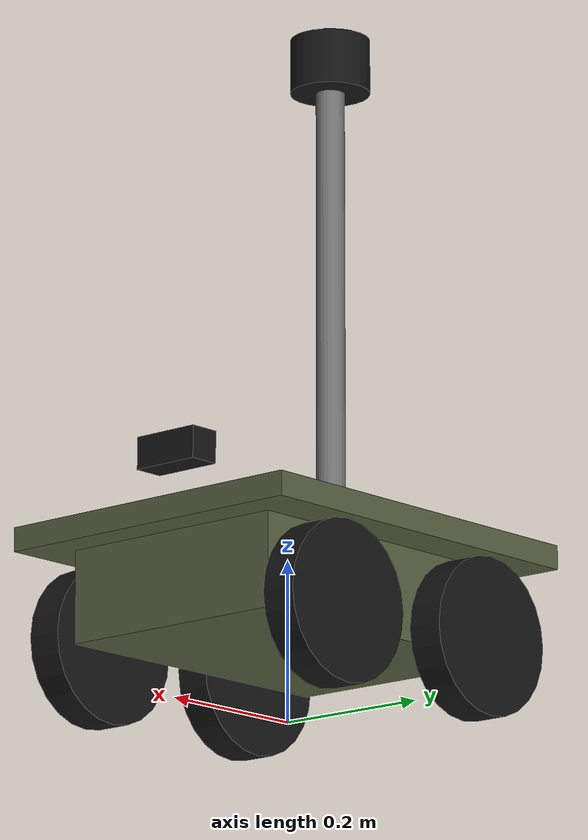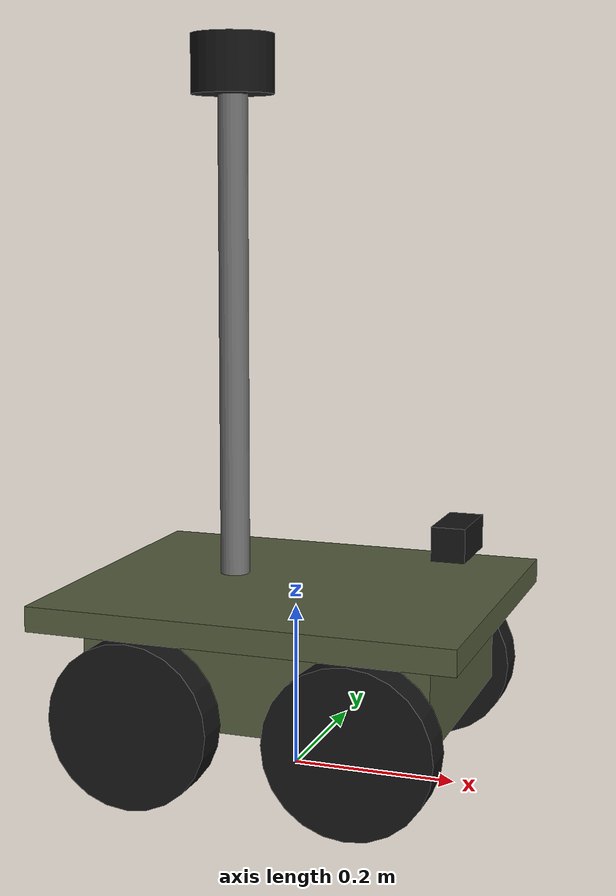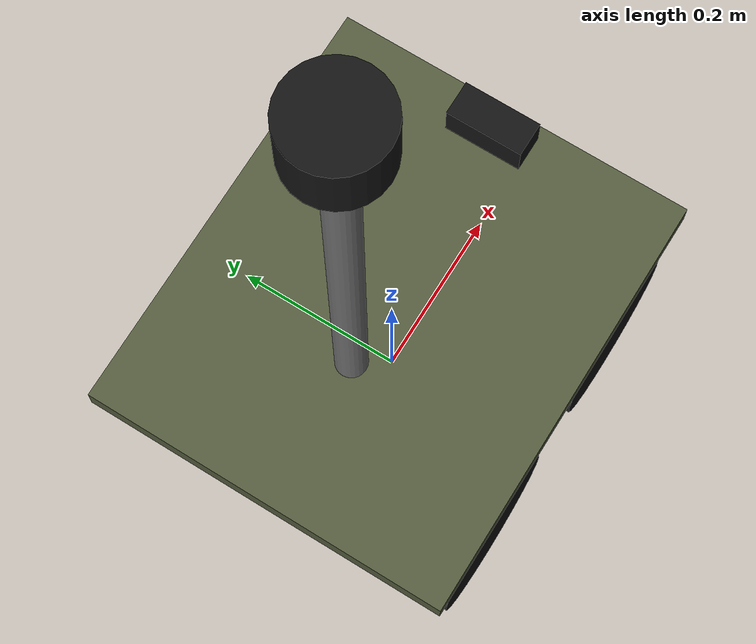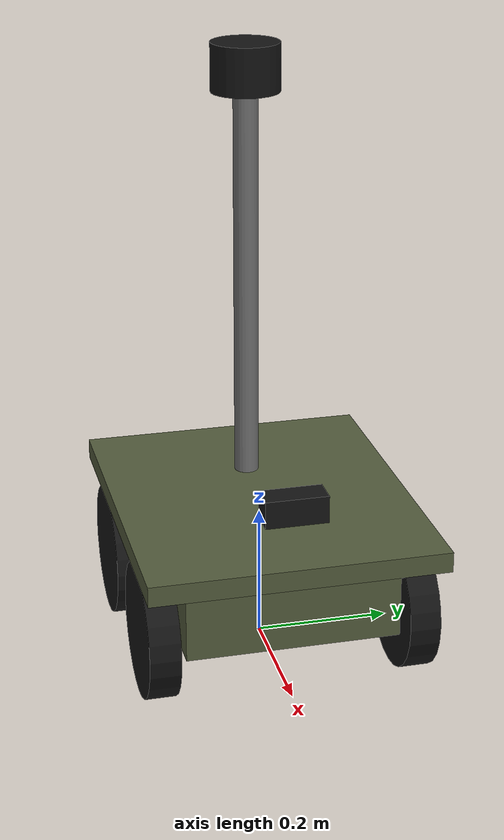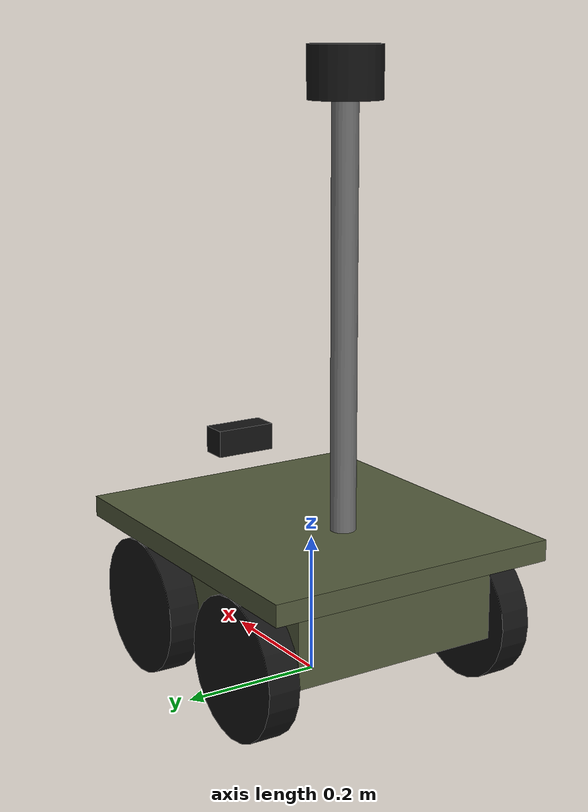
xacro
<?xml version="1.0"?>
<robot name="lup_ugv" xmlns:xacro="http://www.ros.org/wiki/xacro">

  <xacro:arg name="ns" default="lup1"/>
  <!-- interceptor (LUP) or transport (TRN: same base with a cargo box, sand coloured) -->
  <xacro:arg name="variant" default="interceptor"/>
  <xacro:arg name="enable_camera" default="true"/>
  <xacro:arg name="lidar_samples" default="720"/>
  <xacro:arg name="lidar_rate" default="10"/>
  <xacro:arg name="lidar_range_max" default="30.0"/>
  <xacro:arg name="lidar_noise_std" default="0.02"/>
  <xacro:arg name="lidar_height" default="0.85"/>
  <xacro:arg name="camera_width" default="640"/>
  <xacro:arg name="camera_height" default="480"/>
  <xacro:arg name="camera_rate" default="10"/>
  <xacro:arg name="camera_hfov" default="1.25"/>
  <xacro:arg name="camera_noise_std" default="0.007"/>
  <xacro:arg name="max_linear_velocity" default="2.0"/>
  <xacro:arg name="max_angular_velocity" default="3.0"/>
  <xacro:arg name="max_linear_acceleration" default="1.5"/>
  <xacro:arg name="wheel_separation_multiplier" default="1.12"/>
  <xacro:arg name="wheel_mu_longitudinal" default="1.0"/>
  <xacro:arg name="wheel_mu_lateral" default="0.3"/>

  <xacro:property name="ns" value="$(arg ns)"/>

  <!-- Jackal-like dimensions -->
  <xacro:property name="chassis_x" value="0.42"/>
  <xacro:property name="chassis_y" value="0.31"/>
  <xacro:property name="chassis_z" value="0.14"/>
  <xacro:property name="chassis_mass" value="15.0"/>
  <xacro:property name="wheel_radius" value="0.098"/>
  <xacro:property name="wheel_width" value="0.045"/>
  <xacro:property name="wheel_mass" value="0.5"/>
  <xacro:property name="wheel_base" value="0.262"/>
  <xacro:property name="track" value="0.375"/>
  <xacro:property name="chassis_z_center" value="0.155"/>

  <material name="olive"><color rgba="0.33 0.36 0.24 1"/></material>
  <material name="black"><color rgba="0.08 0.08 0.08 1"/></material>
  <material name="grey"><color rgba="0.45 0.45 0.45 1"/></material>
  <material name="sand"><color rgba="0.62 0.55 0.38 1"/></material>

  <xacro:macro name="box_inertia" params="m x y z">
    <inertia ixx="${m * (y*y + z*z) / 12.0}" ixy="0" ixz="0"
             iyy="${m * (x*x + z*z) / 12.0}" iyz="0"
             izz="${m * (x*x + y*y) / 12.0}"/>
  </xacro:macro>

  <link name="base_link">
    <visual>
      <origin xyz="0 0 ${chassis_z_center}"/>
      <geometry><box size="${chassis_x} ${chassis_y} ${chassis_z}"/></geometry>
      <material name="olive"/>
    </visual>
    <visual>
      <!-- Fenders over the wheels -->
      <origin xyz="0 0 ${chassis_z_center + 0.06}"/>
      <geometry><box size="0.508 0.43 0.03"/></geometry>
      <material name="olive"/>
    </visual>
    <xacro:if value="${'$(arg variant)' == 'transport'}">
      <visual>
        <!-- Cargo box (visual only, below the lidar plane) -->
        <origin xyz="-0.02 0 ${chassis_z_center + 0.19}"/>
        <geometry><box size="0.40 0.32 0.24"/></geometry>
        <material name="sand"/>
      </visual>
    </xacro:if>
    <collision>
      <origin xyz="0 0 ${chassis_z_center}"/>
      <geometry><box size="${chassis_x} ${chassis_y} ${chassis_z}"/></geometry>
    </collision>
    <inertial>
      <origin xyz="0 0 ${chassis_z_center}"/>
      <mass value="${chassis_mass}"/>
      <xacro:box_inertia m="${chassis_mass}" x="${chassis_x}" y="${chassis_y}" z="${chassis_z}"/>
    </inertial>
  </link>

  <xacro:macro name="wheel" params="name x y">
    <link name="${name}_wheel">
      <visual>
        <origin rpy="${pi/2} 0 0"/>
        <geometry><cylinder radius="${wheel_radius}" length="${wheel_width}"/></geometry>
        <material name="black"/>
      </visual>
      <collision>
        <origin rpy="${pi/2} 0 0"/>
        <geometry><cylinder radius="${wheel_radius}" length="${wheel_width}"/></geometry>
      </collision>
      <inertial>
        <mass value="${wheel_mass}"/>
        <inertia ixx="${wheel_mass * (3*wheel_radius*wheel_radius + wheel_width*wheel_width) / 12.0}"
                 ixy="0" ixz="0"
                 iyy="${wheel_mass * wheel_radius * wheel_radius / 2.0}" iyz="0"
                 izz="${wheel_mass * (3*wheel_radius*wheel_radius + wheel_width*wheel_width) / 12.0}"/>
      </inertial>
    </link>
    <joint name="${name}_wheel_joint" type="continuous">
      <parent link="base_link"/>
      <child link="${name}_wheel"/>
      <origin xyz="${x} ${y} ${wheel_radius}"/>
      <axis xyz="0 1 0"/>
    </joint>
    <gazebo reference="${name}_wheel">
      <mu1>$(arg wheel_mu_lateral)</mu1>
      <mu2>$(arg wheel_mu_longitudinal)</mu2>
      <fdir1>0 0 1</fdir1>
    </gazebo>
  </xacro:macro>

  <xacro:wheel name="front_left" x="${wheel_base/2}" y="${track/2}"/>
  <xacro:wheel name="rear_left" x="${-wheel_base/2}" y="${track/2}"/>
  <xacro:wheel name="front_right" x="${wheel_base/2}" y="${-track/2}"/>
  <xacro:wheel name="rear_right" x="${-wheel_base/2}" y="${-track/2}"/>

  <!-- Sensor mast and lidar -->
  <link name="mast_link">
    <visual>
      <origin xyz="0 0 ${($(arg lidar_height) - 0.27) / 2}"/>
      <geometry><cylinder radius="0.018" length="${$(arg lidar_height) - 0.27}"/></geometry>
      <material name="grey"/>
    </visual>
    <inertial>
      <mass value="0.3"/>
      <inertia ixx="0.001" ixy="0" ixz="0" iyy="0.001" iyz="0" izz="0.0001"/>
    </inertial>
  </link>
  <joint name="mast_joint" type="fixed">
    <parent link="base_link"/>
    <child link="mast_link"/>
    <origin xyz="-0.08 0 0.235"/>
  </joint>

  <link name="lidar_link">
    <visual>
      <geometry><cylinder radius="0.05" length="0.07"/></geometry>
      <material name="black"/>
    </visual>
    <inertial>
      <mass value="0.5"/>
      <inertia ixx="0.0005" ixy="0" ixz="0" iyy="0.0005" iyz="0" izz="0.0006"/>
    </inertial>
  </link>
  <joint name="lidar_joint" type="fixed">
    <parent link="base_link"/>
    <child link="lidar_link"/>
    <origin xyz="-0.08 0 $(arg lidar_height)"/>
  </joint>

  <gazebo reference="lidar_link">
    <sensor name="lidar" type="gpu_lidar">
      <gz_frame_id>${ns}/lidar_link</gz_frame_id>
      <topic>/${ns}/scan</topic>
      <update_rate>$(arg lidar_rate)</update_rate>
      <always_on>true</always_on>
      <visualize>false</visualize>
      <lidar>
        <scan>
          <horizontal>
            <samples>$(arg lidar_samples)</samples>
            <resolution>1</resolution>
            <min_angle>${-pi}</min_angle>
            <max_angle>${pi - 2.0 * pi / $(arg lidar_samples)}</max_angle>
          </horizontal>
          <vertical>
            <samples>1</samples>
            <resolution>1</resolution>
            <min_angle>0</min_angle>
            <max_angle>0</max_angle>
          </vertical>
        </scan>
        <range>
          <min>0.25</min>
          <max>$(arg lidar_range_max)</max>
          <resolution>0.01</resolution>
        </range>
        <noise>
          <type>gaussian</type>
          <mean>0.0</mean>
          <stddev>$(arg lidar_noise_std)</stddev>
        </noise>
        <!-- Ignore visuals flagged 0x2 (chain-link fence mesh), see generate_world.py -->
        <visibility_mask>4294967293</visibility_mask>
      </lidar>
    </sensor>
  </gazebo>

  <!-- Forward camera -->
  <link name="camera_link">
    <visual>
      <geometry><box size="0.04 0.09 0.04"/></geometry>
      <material name="black"/>
    </visual>
    <inertial>
      <mass value="0.1"/>
      <inertia ixx="0.0001" ixy="0" ixz="0" iyy="0.0001" iyz="0" izz="0.0001"/>
    </inertial>
  </link>
  <joint name="camera_joint" type="fixed">
    <parent link="base_link"/>
    <child link="camera_link"/>
    <origin xyz="0.20 0 0.30"/>
  </joint>
  <link name="camera_optical_frame"/>
  <joint name="camera_optical_joint" type="fixed">
    <parent link="camera_link"/>
    <child link="camera_optical_frame"/>
    <origin rpy="${-pi/2} 0 ${-pi/2}"/>
  </joint>

  <xacro:if value="$(arg enable_camera)">
    <gazebo reference="camera_link">
      <sensor name="camera" type="camera">
        <gz_frame_id>${ns}/camera_optical_frame</gz_frame_id>
        <topic>/${ns}/camera/image_raw</topic>
        <update_rate>$(arg camera_rate)</update_rate>
        <always_on>true</always_on>
        <camera>
          <camera_info_topic>/${ns}/camera/camera_info</camera_info_topic>
          <horizontal_fov>$(arg camera_hfov)</horizontal_fov>
          <image>
            <width>$(arg camera_width)</width>
            <height>$(arg camera_height)</height>
            <format>R8G8B8</format>
          </image>
          <clip><near>0.1</near><far>60</far></clip>
          <noise>
            <type>gaussian</type>
            <mean>0.0</mean>
            <stddev>$(arg camera_noise_std)</stddev>
          </noise>
        </camera>
      </sensor>
    </gazebo>
  </xacro:if>

  <!-- Skid-steer drive. The DiffDrive odometry is integrated from the wheel
       joints; perimeter_defense_sim/odom_noise adds slip and drift on top. -->
  <gazebo>
    <plugin filename="gz-sim-diff-drive-system" name="gz::sim::systems::DiffDrive">
      <left_joint>front_left_wheel_joint</left_joint>
      <left_joint>rear_left_wheel_joint</left_joint>
      <right_joint>front_right_wheel_joint</right_joint>
      <right_joint>rear_right_wheel_joint</right_joint>
      <wheel_separation>${track * $(arg wheel_separation_multiplier)}</wheel_separation>
      <wheel_radius>${wheel_radius}</wheel_radius>
      <max_linear_velocity>$(arg max_linear_velocity)</max_linear_velocity>
      <min_linear_velocity>${-$(arg max_linear_velocity)}</min_linear_velocity>
      <max_angular_velocity>$(arg max_angular_velocity)</max_angular_velocity>
      <min_angular_velocity>${-$(arg max_angular_velocity)}</min_angular_velocity>
      <max_linear_acceleration>$(arg max_linear_acceleration)</max_linear_acceleration>
      <min_linear_acceleration>${-$(arg max_linear_acceleration) * 1.5}</min_linear_acceleration>
      <topic>/${ns}/cmd_vel</topic>
      <odom_topic>/${ns}/odom_wheel</odom_topic>
      <tf_topic>/${ns}/tf_wheel</tf_topic>
      <frame_id>${ns}/odom</frame_id>
      <child_frame_id>${ns}/base_link</child_frame_id>
      <odom_publish_frequency>30</odom_publish_frequency>
    </plugin>
    <plugin filename="gz-sim-joint-state-publisher-system" name="gz::sim::systems::JointStatePublisher">
      <topic>/${ns}/joint_states</topic>
    </plugin>
    <plugin filename="gz-sim-pose-publisher-system" name="gz::sim::systems::PosePublisher">
      <publish_link_pose>false</publish_link_pose>
      <publish_nested_model_pose>false</publish_nested_model_pose>
      <publish_model_pose>true</publish_model_pose>
      <use_pose_vector_msg>false</use_pose_vector_msg>
      <update_frequency>20</update_frequency>
    </plugin>
  </gazebo>
</robot>
